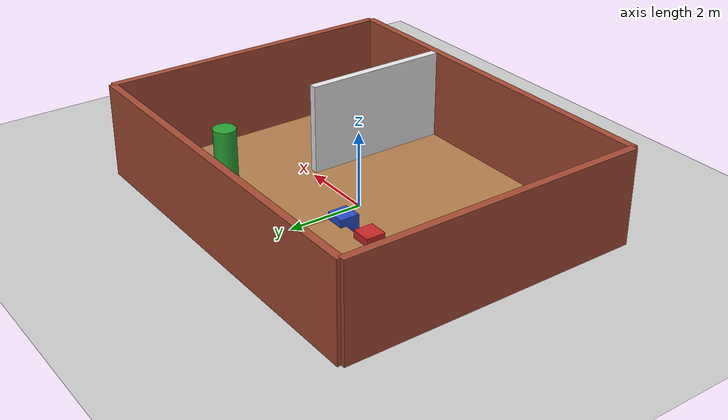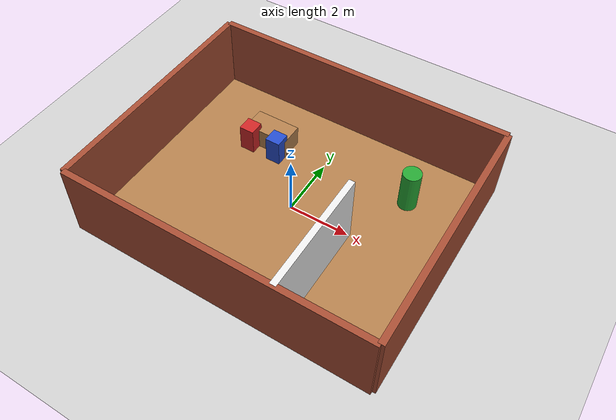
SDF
<?xml version="1.0"?>
<sdf version="1.6">
  <world name="simple_house">

    <!-- Physics -->
    <physics name="default_physics" default="0" type="ode">
      <gravity>0 0 -9.8066</gravity>
      <ode>
        <solver>
          <type>quick</type>
          <iters>150</iters>
          <sor>1.3</sor>
        </solver>
        <constraints>
          <cfm>0.00001</cfm>
          <erp>0.2</erp>
          <contact_max_correcting_vel>1000</contact_max_correcting_vel>
          <contact_surface_layer>0.01</contact_surface_layer>
        </constraints>
      </ode>
      <max_step_size>0.004</max_step_size>
      <real_time_factor>1</real_time_factor>
      <real_time_update_rate>250</real_time_update_rate>
    </physics>

    <!-- A global light source -->
    <include>
      <uri>model://sun</uri>
    </include>

    <!-- Ground plane -->
    <include>
      <uri>model://ground_plane</uri>
    </include>

    <!-- Walls to create room structure -->
    <!-- Floor -->
    <model name="floor">
      <static>true</static>
      <link name="link">
        <collision name="collision">
          <geometry>
            <box>
              <size>10 8 0.1</size>
            </box>
          </geometry>
        </collision>
        <visual name="visual">
          <geometry>
            <box>
              <size>10 8 0.1</size>
            </box>
          </geometry>
          <material>
            <script>
              <uri>file://media/materials/scripts/gazebo.material</uri>
              <name>Gazebo/Wood</name>
            </script>
          </material>
        </visual>
      </link>
      <pose>0 0 0.05 0 0 0</pose>
    </model>

    <!-- North Wall -->
    <model name="north_wall">
      <static>true</static>
      <link name="link">
        <collision name="collision">
          <geometry>
            <box>
              <size>10 0.2 2.5</size>
            </box>
          </geometry>
        </collision>
        <visual name="visual">
          <geometry>
            <box>
              <size>10 0.2 2.5</size>
            </box>
          </geometry>
          <material>
            <script>
              <uri>file://media/materials/scripts/gazebo.material</uri>
              <name>Gazebo/Bricks</name>
            </script>
          </material>
        </visual>
      </link>
      <pose>0 4 1.25 0 0 0</pose>
    </model>

    <!-- South Wall -->
    <model name="south_wall">
      <static>true</static>
      <link name="link">
        <collision name="collision">
          <geometry>
            <box>
              <size>10 0.2 2.5</size>
            </box>
          </geometry>
        </collision>
        <visual name="visual">
          <geometry>
            <box>
              <size>10 0.2 2.5</size>
            </box>
          </geometry>
          <material>
            <script>
              <uri>file://media/materials/scripts/gazebo.material</uri>
              <name>Gazebo/Bricks</name>
            </script>
          </material>
        </visual>
      </link>
      <pose>0 -4 1.25 0 0 0</pose>
    </model>

    <!-- East Wall -->
    <model name="east_wall">
      <static>true</static>
      <link name="link">
        <collision name="collision">
          <geometry>
            <box>
              <size>0.2 8 2.5</size>
            </box>
          </geometry>
        </collision>
        <visual name="visual">
          <geometry>
            <box>
              <size>0.2 8 2.5</size>
            </box>
          </geometry>
          <material>
            <script>
              <uri>file://media/materials/scripts/gazebo.material</uri>
              <name>Gazebo/Bricks</name>
            </script>
          </material>
        </visual>
      </link>
      <pose>5 0 1.25 0 0 0</pose>
    </model>

    <!-- West Wall -->
    <model name="west_wall">
      <static>true</static>
      <link name="link">
        <collision name="collision">
          <geometry>
            <box>
              <size>0.2 8 2.5</size>
            </box>
          </geometry>
        </collision>
        <visual name="visual">
          <geometry>
            <box>
              <size>0.2 8 2.5</size>
            </box>
          </geometry>
          <material>
            <script>
              <uri>file://media/materials/scripts/gazebo.material</uri>
              <name>Gazebo/Bricks</name>
            </script>
          </material>
        </visual>
      </link>
      <pose>-5 0 1.25 0 0 0</pose>
    </model>

    <!-- Interior Wall to create rooms -->
    <model name="interior_wall">
      <static>true</static>
      <link name="link">
        <collision name="collision">
          <geometry>
            <box>
              <size>0.2 4 2.5</size>
            </box>
          </geometry>
        </collision>
        <visual name="visual">
          <geometry>
            <box>
              <size>0.2 4 2.5</size>
            </box>
          </geometry>
          <material>
            <script>
              <uri>file://media/materials/scripts/gazebo.material</uri>
              <name>Gazebo/White</name>
            </script>
          </material>
        </visual>
      </link>
      <pose>2 -2 1.25 0 0 0</pose>
    </model>

    <!-- Some furniture/obstacles -->
    <model name="table">
      <static>true</static>
      <link name="link">
        <collision name="collision">
          <geometry>
            <box>
              <size>1.5 0.8 0.8</size>
            </box>
          </geometry>
        </collision>
        <visual name="visual">
          <geometry>
            <box>
              <size>1.5 0.8 0.8</size>
            </box>
          </geometry>
          <material>
            <script>
              <uri>file://media/materials/scripts/gazebo.material</uri>
              <name>Gazebo/Wood</name>
            </script>
          </material>
        </visual>
      </link>
      <pose>-2 2 0.4 0 0 0</pose>
    </model>

    <model name="chair1">
      <static>true</static>
      <link name="link">
        <collision name="collision">
          <geometry>
            <box>
              <size>0.5 0.5 1</size>
            </box>
          </geometry>
        </collision>
        <visual name="visual">
          <geometry>
            <box>
              <size>0.5 0.5 1</size>
            </box>
          </geometry>
          <material>
            <script>
              <uri>file://media/materials/scripts/gazebo.material</uri>
              <name>Gazebo/Red</name>
            </script>
          </material>
        </visual>
      </link>
      <pose>-2.5 1.5 0.5 0 0 0</pose>
    </model>

    <model name="chair2">
      <static>true</static>
      <link name="link">
        <collision name="collision">
          <geometry>
            <box>
              <size>0.5 0.5 1</size>
            </box>
          </geometry>
        </collision>
        <visual name="visual">
          <geometry>
            <box>
              <size>0.5 0.5 1</size>
            </box>
          </geometry>
          <material>
            <script>
              <uri>file://media/materials/scripts/gazebo.material</uri>
              <name>Gazebo/Blue</name>
            </script>
          </material>
        </visual>
      </link>
      <pose>-1.5 1.5 0.5 0 0 0</pose>
    </model>

    <!-- Cylindrical obstacle -->
    <model name="cylinder_obstacle">
      <static>true</static>
      <link name="link">
        <collision name="collision">
          <geometry>
            <cylinder>
              <radius>0.3</radius>
              <length>1.5</length>
            </cylinder>
          </geometry>
        </collision>
        <visual name="visual">
          <geometry>
            <cylinder>
              <radius>0.3</radius>
              <length>1.5</length>
            </cylinder>
          </geometry>
          <material>
            <script>
              <uri>file://media/materials/scripts/gazebo.material</uri>
              <name>Gazebo/Green</name>
            </script>
          </material>
        </visual>
      </link>
      <pose>3 2 0.75 0 0 0</pose>
    </model>

  </world>
</sdf>
